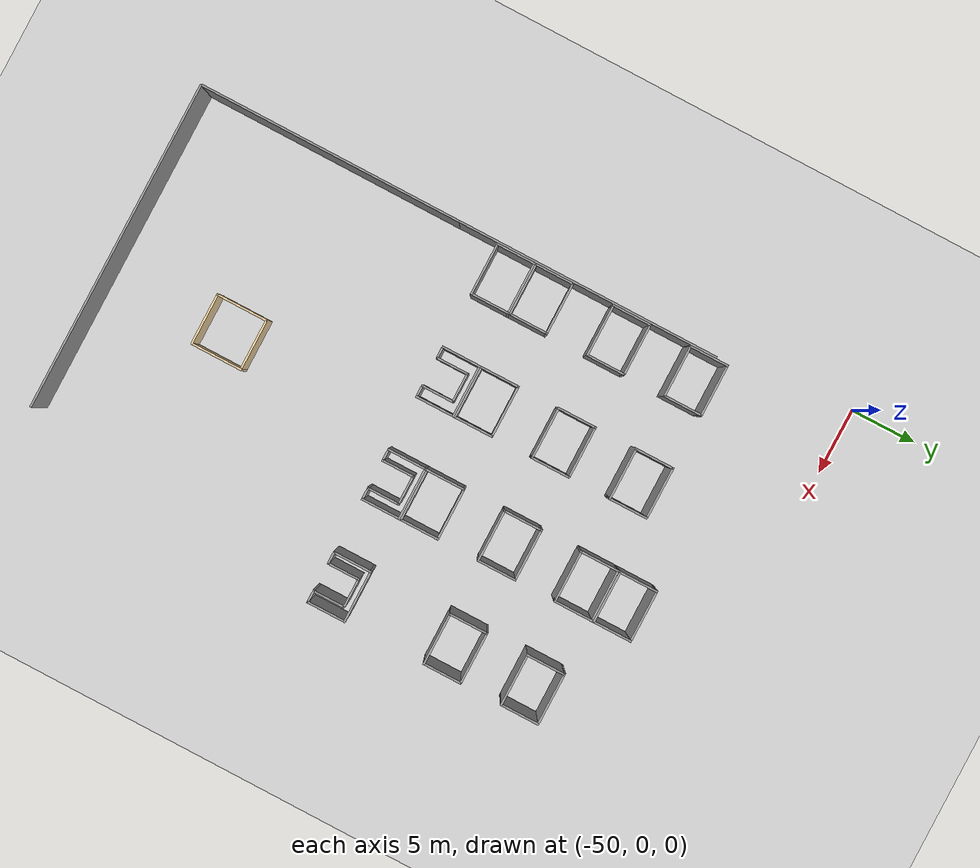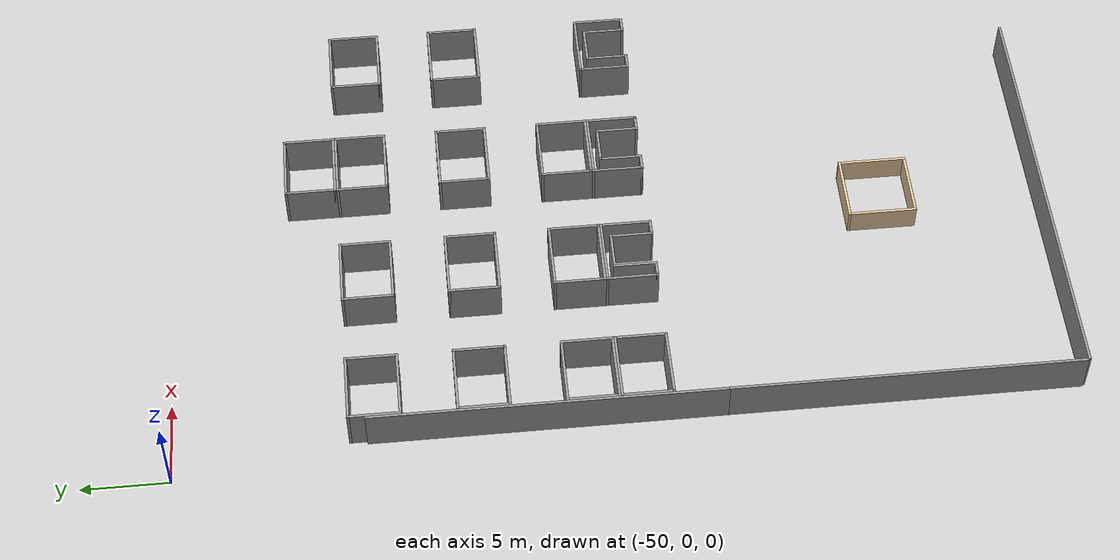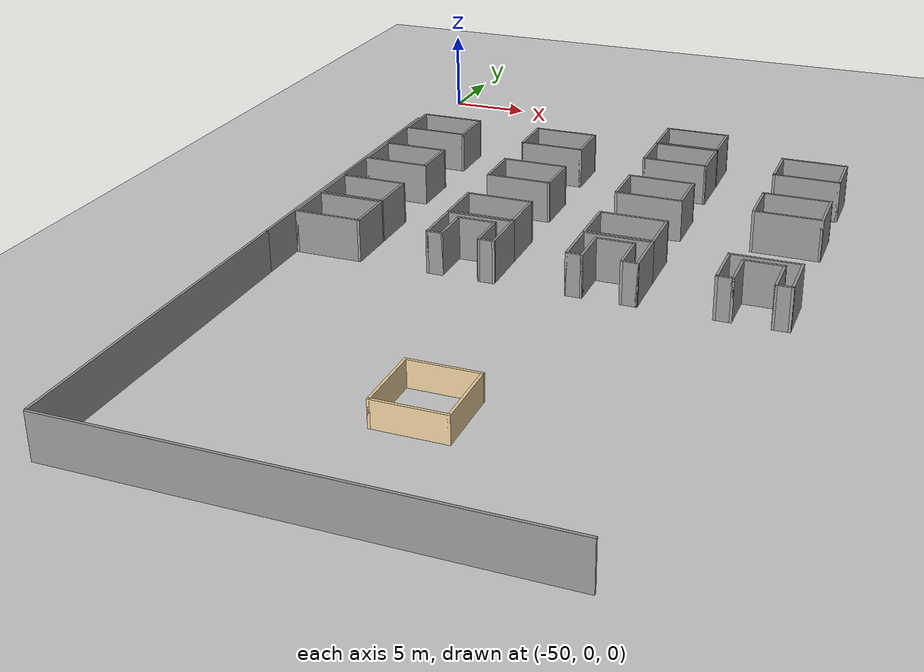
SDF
<sdf version="1.6">
 <world name="default">
  <model name="ground_plane">
   <static>1</static>
   <link name="link">
    <collision name="collision">
     <geometry><plane><normal>0 0 1</normal><size>105 105</size></plane></geometry>
     <surface>
      <contact><collide_bitmask>65535</collide_bitmask></contact>
      <friction><ode><mu>100</mu><mu2>50</mu2></ode></friction>
     </surface>
    </collision>
    <visual name="visual">
     <cast_shadows>0</cast_shadows>
     <geometry><plane><normal>0 0 1</normal><size>105 105</size></plane></geometry>
     <material>
      <script><uri>file://media/materials/scripts/gazebo.material</uri><name>Gazebo/Grey</name></script>
     </material>
    </visual>
   </link>
  </model>
  <model name="wall_v20m">
   <pose>-48.4198 -20.7165 0 0 -0 0</pose>
   <link name="Wall_35">
    <collision name="Wall_35_Collision">
     <geometry><box><size>20 0.15 2.5</size></box></geometry>
     <pose>0 0 1.25 0 -0 0</pose>
    </collision>
    <visual name="Wall_35_Visual">
     <pose>0 0 1.25 0 -0 0</pose>
     <geometry><box><size>20 0.15 2.5</size></box></geometry>
     <material>
      <script><uri>file://media/materials/scripts/gazebo.material</uri><name>Gazebo/Grey</name></script>
      <ambient>1 1 1 1</ambient>
     </material>
     <meta><layer>0</layer></meta>
    </visual>
    <pose>0 -0 0 0 -0 -1.5708</pose>
   </link>
   <static>1</static>
  </model>
  <model name="base3x4_26">
   <pose>-46.3516 -23.2162 0 0 -0 0</pose>
   <link name="Wall_18">
    <collision name="Wall_18_Collision">
     <geometry><box><size>3 0.15 2.5</size></box></geometry>
     <pose>0 0 1.25 0 -0 0</pose>
    </collision>
    <visual name="Wall_18_Visual">
     <pose>0 0 1.25 0 -0 0</pose>
     <geometry><box><size>3 0.15 2.5</size></box></geometry>
     <material>
      <script><uri>file://media/materials/scripts/gazebo.material</uri><name>Gazebo/Grey</name></script>
      <ambient>1 1 1 1</ambient>
     </material>
     <meta><layer>0</layer></meta>
    </visual>
    <pose>-1.925 -0 0 0 -0 -1.5708</pose>
   </link>
   <link name="Wall_19">
    <collision name="Wall_19_Collision">
     <geometry><box><size>4 0.15 2.5</size></box></geometry>
     <pose>0 0 1.25 0 -0 0</pose>
    </collision>
    <visual name="Wall_19_Visual">
     <pose>0 0 1.25 0 -0 0</pose>
     <geometry><box><size>4 0.15 2.5</size></box></geometry>
     <material>
      <script><uri>file://media/materials/scripts/gazebo.material</uri><name>Gazebo/Grey</name></script>
      <ambient>1 1 1 1</ambient>
     </material>
     <meta><layer>0</layer></meta>
    </visual>
    <pose>-0 -1.425 0 0 -0 0</pose>
   </link>
   <link name="Wall_20">
    <collision name="Wall_20_Collision">
     <geometry><box><size>3 0.15 2.5</size></box></geometry>
     <pose>0 0 1.25 0 -0 0</pose>
    </collision>
    <visual name="Wall_20_Visual">
     <pose>0 0 1.25 0 -0 0</pose>
     <geometry><box><size>3 0.15 2.5</size></box></geometry>
     <material>
      <script><uri>file://media/materials/scripts/gazebo.material</uri><name>Gazebo/Grey</name></script>
      <ambient>1 1 1 1</ambient>
     </material>
     <meta><layer>0</layer></meta>
    </visual>
    <pose>1.925 -0 0 0 -0 1.5708</pose>
   </link>
   <link name="Wall_21">
    <collision name="Wall_21_Collision">
     <geometry><box><size>4 0.15 2.5</size></box></geometry>
     <pose>0 0 1.25 0 -0 0</pose>
    </collision>
    <visual name="Wall_21_Visual">
     <pose>0 0 1.25 0 -0 0</pose>
     <geometry><box><size>4 0.15 2.5</size></box></geometry>
     <material>
      <script><uri>file://media/materials/scripts/gazebo.material</uri><name>Gazebo/Grey</name></script>
      <ambient>1 1 1 1</ambient>
     </material>
     <meta><layer>0</layer></meta>
    </visual>
    <pose>-0 1.425 0 0 -0 3.14159</pose>
   </link>
   <static>1</static>
  </model>
  <model name="base3x4_28">
   <pose>-46.3508 -17.215 0 0 -0 0</pose>
   <link name="Wall_18">
    <collision name="Wall_18_Collision">
     <geometry><box><size>3 0.15 2.5</size></box></geometry>
     <pose>0 0 1.25 0 -0 0</pose>
    </collision>
    <visual name="Wall_18_Visual">
     <pose>0 0 1.25 0 -0 0</pose>
     <geometry><box><size>3 0.15 2.5</size></box></geometry>
     <material>
      <script><uri>file://media/materials/scripts/gazebo.material</uri><name>Gazebo/Grey</name></script>
      <ambient>1 1 1 1</ambient>
     </material>
     <meta><layer>0</layer></meta>
    </visual>
    <pose>-1.925 -0 0 0 -0 -1.5708</pose>
   </link>
   <link name="Wall_19">
    <collision name="Wall_19_Collision">
     <geometry><box><size>4 0.15 2.5</size></box></geometry>
     <pose>0 0 1.25 0 -0 0</pose>
    </collision>
    <visual name="Wall_19_Visual">
     <pose>0 0 1.25 0 -0 0</pose>
     <geometry><box><size>4 0.15 2.5</size></box></geometry>
     <material>
      <script><uri>file://media/materials/scripts/gazebo.material</uri><name>Gazebo/Grey</name></script>
      <ambient>1 1 1 1</ambient>
     </material>
     <meta><layer>0</layer></meta>
    </visual>
    <pose>-0 -1.425 0 0 -0 0</pose>
   </link>
   <link name="Wall_20">
    <collision name="Wall_20_Collision">
     <geometry><box><size>3 0.15 2.5</size></box></geometry>
     <pose>0 0 1.25 0 -0 0</pose>
    </collision>
    <visual name="Wall_20_Visual">
     <pose>0 0 1.25 0 -0 0</pose>
     <geometry><box><size>3 0.15 2.5</size></box></geometry>
     <material>
      <script><uri>file://media/materials/scripts/gazebo.material</uri><name>Gazebo/Grey</name></script>
      <ambient>1 1 1 1</ambient>
     </material>
     <meta><layer>0</layer></meta>
    </visual>
    <pose>1.925 -0 0 0 -0 1.5708</pose>
   </link>
   <link name="Wall_21">
    <collision name="Wall_21_Collision">
     <geometry><box><size>4 0.15 2.5</size></box></geometry>
     <pose>0 0 1.25 0 -0 0</pose>
    </collision>
    <visual name="Wall_21_Visual">
     <pose>0 0 1.25 0 -0 0</pose>
     <geometry><box><size>4 0.15 2.5</size></box></geometry>
     <material>
      <script><uri>file://media/materials/scripts/gazebo.material</uri><name>Gazebo/Grey</name></script>
      <ambient>1 1 1 1</ambient>
     </material>
     <meta><layer>0</layer></meta>
    </visual>
    <pose>-0 1.425 0 0 -0 3.14159</pose>
   </link>
   <static>1</static>
  </model>
  <model name="base3x4_34">
   <pose>-38.3558 -23.2346 0 0 -0 0</pose>
   <link name="Wall_18">
    <collision name="Wall_18_Collision">
     <geometry><box><size>3 0.15 2.5</size></box></geometry>
     <pose>0 0 1.25 0 -0 0</pose>
    </collision>
    <visual name="Wall_18_Visual">
     <pose>0 0 1.25 0 -0 0</pose>
     <geometry><box><size>3 0.15 2.5</size></box></geometry>
     <material>
      <script><uri>file://media/materials/scripts/gazebo.material</uri><name>Gazebo/Grey</name></script>
      <ambient>1 1 1 1</ambient>
     </material>
     <meta><layer>0</layer></meta>
    </visual>
    <pose>-1.925 -0 0 0 -0 -1.5708</pose>
   </link>
   <link name="Wall_19">
    <collision name="Wall_19_Collision">
     <geometry><box><size>4 0.15 2.5</size></box></geometry>
     <pose>0 0 1.25 0 -0 0</pose>
    </collision>
    <visual name="Wall_19_Visual">
     <pose>0 0 1.25 0 -0 0</pose>
     <geometry><box><size>4 0.15 2.5</size></box></geometry>
     <material>
      <script><uri>file://media/materials/scripts/gazebo.material</uri><name>Gazebo/Grey</name></script>
      <ambient>1 1 1 1</ambient>
     </material>
     <meta><layer>0</layer></meta>
    </visual>
    <pose>-0 -1.425 0 0 -0 0</pose>
   </link>
   <link name="Wall_20">
    <collision name="Wall_20_Collision">
     <geometry><box><size>3 0.15 2.5</size></box></geometry>
     <pose>0 0 1.25 0 -0 0</pose>
    </collision>
    <visual name="Wall_20_Visual">
     <pose>0 0 1.25 0 -0 0</pose>
     <geometry><box><size>3 0.15 2.5</size></box></geometry>
     <material>
      <script><uri>file://media/materials/scripts/gazebo.material</uri><name>Gazebo/Grey</name></script>
      <ambient>1 1 1 1</ambient>
     </material>
     <meta><layer>0</layer></meta>
    </visual>
    <pose>1.925 -0 0 0 -0 1.5708</pose>
   </link>
   <link name="Wall_21">
    <collision name="Wall_21_Collision">
     <geometry><box><size>4 0.15 2.5</size></box></geometry>
     <pose>0 0 1.25 0 -0 0</pose>
    </collision>
    <visual name="Wall_21_Visual">
     <pose>0 0 1.25 0 -0 0</pose>
     <geometry><box><size>4 0.15 2.5</size></box></geometry>
     <material>
      <script><uri>file://media/materials/scripts/gazebo.material</uri><name>Gazebo/Grey</name></script>
      <ambient>1 1 1 1</ambient>
     </material>
     <meta><layer>0</layer></meta>
    </visual>
    <pose>-0 1.425 0 0 -0 3.14159</pose>
   </link>
   <static>1</static>
  </model>
  <model name="base3x4_36">
   <pose>-38.357 -17.2543 0 0 -0 0</pose>
   <link name="Wall_18">
    <collision name="Wall_18_Collision">
     <geometry><box><size>3 0.15 2.5</size></box></geometry>
     <pose>0 0 1.25 0 -0 0</pose>
    </collision>
    <visual name="Wall_18_Visual">
     <pose>0 0 1.25 0 -0 0</pose>
     <geometry><box><size>3 0.15 2.5</size></box></geometry>
     <material>
      <script><uri>file://media/materials/scripts/gazebo.material</uri><name>Gazebo/Grey</name></script>
      <ambient>1 1 1 1</ambient>
     </material>
     <meta><layer>0</layer></meta>
    </visual>
    <pose>-1.925 -0 0 0 -0 -1.5708</pose>
   </link>
   <link name="Wall_19">
    <collision name="Wall_19_Collision">
     <geometry><box><size>4 0.15 2.5</size></box></geometry>
     <pose>0 0 1.25 0 -0 0</pose>
    </collision>
    <visual name="Wall_19_Visual">
     <pose>0 0 1.25 0 -0 0</pose>
     <geometry><box><size>4 0.15 2.5</size></box></geometry>
     <material>
      <script><uri>file://media/materials/scripts/gazebo.material</uri><name>Gazebo/Grey</name></script>
      <ambient>1 1 1 1</ambient>
     </material>
     <meta><layer>0</layer></meta>
    </visual>
    <pose>-0 -1.425 0 0 -0 0</pose>
   </link>
   <link name="Wall_20">
    <collision name="Wall_20_Collision">
     <geometry><box><size>3 0.15 2.5</size></box></geometry>
     <pose>0 0 1.25 0 -0 0</pose>
    </collision>
    <visual name="Wall_20_Visual">
     <pose>0 0 1.25 0 -0 0</pose>
     <geometry><box><size>3 0.15 2.5</size></box></geometry>
     <material>
      <script><uri>file://media/materials/scripts/gazebo.material</uri><name>Gazebo/Grey</name></script>
      <ambient>1 1 1 1</ambient>
     </material>
     <meta><layer>0</layer></meta>
    </visual>
    <pose>1.925 -0 0 0 -0 1.5708</pose>
   </link>
   <link name="Wall_21">
    <collision name="Wall_21_Collision">
     <geometry><box><size>4 0.15 2.5</size></box></geometry>
     <pose>0 0 1.25 0 -0 0</pose>
    </collision>
    <visual name="Wall_21_Visual">
     <pose>0 0 1.25 0 -0 0</pose>
     <geometry><box><size>4 0.15 2.5</size></box></geometry>
     <material>
      <script><uri>file://media/materials/scripts/gazebo.material</uri><name>Gazebo/Grey</name></script>
      <ambient>1 1 1 1</ambient>
     </material>
     <meta><layer>0</layer></meta>
    </visual>
    <pose>-0 1.425 0 0 -0 3.14159</pose>
   </link>
   <static>1</static>
  </model>
  <model name="base3x4_31">
   <pose>-30.4046 -23.2308 0 0 -0 0</pose>
   <link name="Wall_18">
    <collision name="Wall_18_Collision">
     <geometry><box><size>3 0.15 2.5</size></box></geometry>
     <pose>0 0 1.25 0 -0 0</pose>
    </collision>
    <visual name="Wall_18_Visual">
     <pose>0 0 1.25 0 -0 0</pose>
     <geometry><box><size>3 0.15 2.5</size></box></geometry>
     <material>
      <script><uri>file://media/materials/scripts/gazebo.material</uri><name>Gazebo/Grey</name></script>
      <ambient>1 1 1 1</ambient>
     </material>
     <meta><layer>0</layer></meta>
    </visual>
    <pose>-1.925 -0 0 0 -0 -1.5708</pose>
   </link>
   <link name="Wall_19">
    <collision name="Wall_19_Collision">
     <geometry><box><size>4 0.15 2.5</size></box></geometry>
     <pose>0 0 1.25 0 -0 0</pose>
    </collision>
    <visual name="Wall_19_Visual">
     <pose>0 0 1.25 0 -0 0</pose>
     <geometry><box><size>4 0.15 2.5</size></box></geometry>
     <material>
      <script><uri>file://media/materials/scripts/gazebo.material</uri><name>Gazebo/Grey</name></script>
      <ambient>1 1 1 1</ambient>
     </material>
     <meta><layer>0</layer></meta>
    </visual>
    <pose>-0 -1.425 0 0 -0 0</pose>
   </link>
   <link name="Wall_20">
    <collision name="Wall_20_Collision">
     <geometry><box><size>3 0.15 2.5</size></box></geometry>
     <pose>0 0 1.25 0 -0 0</pose>
    </collision>
    <visual name="Wall_20_Visual">
     <pose>0 0 1.25 0 -0 0</pose>
     <geometry><box><size>3 0.15 2.5</size></box></geometry>
     <material>
      <script><uri>file://media/materials/scripts/gazebo.material</uri><name>Gazebo/Grey</name></script>
      <ambient>1 1 1 1</ambient>
     </material>
     <meta><layer>0</layer></meta>
    </visual>
    <pose>1.925 -0 0 0 -0 1.5708</pose>
   </link>
   <link name="Wall_21">
    <collision name="Wall_21_Collision">
     <geometry><box><size>4 0.15 2.5</size></box></geometry>
     <pose>0 0 1.25 0 -0 0</pose>
    </collision>
    <visual name="Wall_21_Visual">
     <pose>0 0 1.25 0 -0 0</pose>
     <geometry><box><size>4 0.15 2.5</size></box></geometry>
     <material>
      <script><uri>file://media/materials/scripts/gazebo.material</uri><name>Gazebo/Grey</name></script>
      <ambient>1 1 1 1</ambient>
     </material>
     <meta><layer>0</layer></meta>
    </visual>
    <pose>-0 1.425 0 0 -0 3.14159</pose>
   </link>
   <static>1</static>
  </model>
  <model name="base3x4_33">
   <pose>-30.4092 -17.2319 0 0 -0 0</pose>
   <link name="Wall_18">
    <collision name="Wall_18_Collision">
     <geometry><box><size>3 0.15 2.5</size></box></geometry>
     <pose>0 0 1.25 0 -0 0</pose>
    </collision>
    <visual name="Wall_18_Visual">
     <pose>0 0 1.25 0 -0 0</pose>
     <geometry><box><size>3 0.15 2.5</size></box></geometry>
     <material>
      <script><uri>file://media/materials/scripts/gazebo.material</uri><name>Gazebo/Grey</name></script>
      <ambient>1 1 1 1</ambient>
     </material>
     <meta><layer>0</layer></meta>
    </visual>
    <pose>-1.925 -0 0 0 -0 -1.5708</pose>
   </link>
   <link name="Wall_19">
    <collision name="Wall_19_Collision">
     <geometry><box><size>4 0.15 2.5</size></box></geometry>
     <pose>0 0 1.25 0 -0 0</pose>
    </collision>
    <visual name="Wall_19_Visual">
     <pose>0 0 1.25 0 -0 0</pose>
     <geometry><box><size>4 0.15 2.5</size></box></geometry>
     <material>
      <script><uri>file://media/materials/scripts/gazebo.material</uri><name>Gazebo/Grey</name></script>
      <ambient>1 1 1 1</ambient>
     </material>
     <meta><layer>0</layer></meta>
    </visual>
    <pose>-0 -1.425 0 0 -0 0</pose>
   </link>
   <link name="Wall_20">
    <collision name="Wall_20_Collision">
     <geometry><box><size>3 0.15 2.5</size></box></geometry>
     <pose>0 0 1.25 0 -0 0</pose>
    </collision>
    <visual name="Wall_20_Visual">
     <pose>0 0 1.25 0 -0 0</pose>
     <geometry><box><size>3 0.15 2.5</size></box></geometry>
     <material>
      <script><uri>file://media/materials/scripts/gazebo.material</uri><name>Gazebo/Grey</name></script>
      <ambient>1 1 1 1</ambient>
     </material>
     <meta><layer>0</layer></meta>
    </visual>
    <pose>1.925 -0 0 0 -0 1.5708</pose>
   </link>
   <link name="Wall_21">
    <collision name="Wall_21_Collision">
     <geometry><box><size>4 0.15 2.5</size></box></geometry>
     <pose>0 0 1.25 0 -0 0</pose>
    </collision>
    <visual name="Wall_21_Visual">
     <pose>0 0 1.25 0 -0 0</pose>
     <geometry><box><size>4 0.15 2.5</size></box></geometry>
     <material>
      <script><uri>file://media/materials/scripts/gazebo.material</uri><name>Gazebo/Grey</name></script>
      <ambient>1 1 1 1</ambient>
     </material>
     <meta><layer>0</layer></meta>
    </visual>
    <pose>-0 1.425 0 0 -0 3.14159</pose>
   </link>
   <static>1</static>
  </model>
  <model name="base3x4_39">
   <pose>-46.3493 -11.2283 0 0 -0 0</pose>
   <link name="Wall_18">
    <collision name="Wall_18_Collision">
     <geometry><box><size>3 0.15 2.5</size></box></geometry>
     <pose>0 0 1.25 0 -0 0</pose>
    </collision>
    <visual name="Wall_18_Visual">
     <pose>0 0 1.25 0 -0 0</pose>
     <geometry><box><size>3 0.15 2.5</size></box></geometry>
     <material>
      <script><uri>file://media/materials/scripts/gazebo.material</uri><name>Gazebo/Grey</name></script>
      <ambient>1 1 1 1</ambient>
     </material>
     <meta><layer>0</layer></meta>
    </visual>
    <pose>-1.925 -0 0 0 -0 -1.5708</pose>
   </link>
   <link name="Wall_19">
    <collision name="Wall_19_Collision">
     <geometry><box><size>4 0.15 2.5</size></box></geometry>
     <pose>0 0 1.25 0 -0 0</pose>
    </collision>
    <visual name="Wall_19_Visual">
     <pose>0 0 1.25 0 -0 0</pose>
     <geometry><box><size>4 0.15 2.5</size></box></geometry>
     <material>
      <script><uri>file://media/materials/scripts/gazebo.material</uri><name>Gazebo/Grey</name></script>
      <ambient>1 1 1 1</ambient>
     </material>
     <meta><layer>0</layer></meta>
    </visual>
    <pose>-0 -1.425 0 0 -0 0</pose>
   </link>
   <link name="Wall_20">
    <collision name="Wall_20_Collision">
     <geometry><box><size>3 0.15 2.5</size></box></geometry>
     <pose>0 0 1.25 0 -0 0</pose>
    </collision>
    <visual name="Wall_20_Visual">
     <pose>0 0 1.25 0 -0 0</pose>
     <geometry><box><size>3 0.15 2.5</size></box></geometry>
     <material>
      <script><uri>file://media/materials/scripts/gazebo.material</uri><name>Gazebo/Grey</name></script>
      <ambient>1 1 1 1</ambient>
     </material>
     <meta><layer>0</layer></meta>
    </visual>
    <pose>1.925 -0 0 0 -0 1.5708</pose>
   </link>
   <link name="Wall_21">
    <collision name="Wall_21_Collision">
     <geometry><box><size>4 0.15 2.5</size></box></geometry>
     <pose>0 0 1.25 0 -0 0</pose>
    </collision>
    <visual name="Wall_21_Visual">
     <pose>0 0 1.25 0 -0 0</pose>
     <geometry><box><size>4 0.15 2.5</size></box></geometry>
     <material>
      <script><uri>file://media/materials/scripts/gazebo.material</uri><name>Gazebo/Grey</name></script>
      <ambient>1 1 1 1</ambient>
     </material>
     <meta><layer>0</layer></meta>
    </visual>
    <pose>-0 1.425 0 0 -0 3.14159</pose>
   </link>
   <static>1</static>
  </model>
  <model name="base3x4_59">
   <pose>-38.3726 -11.2428 0 0 -0 0</pose>
   <link name="Wall_18">
    <collision name="Wall_18_Collision">
     <geometry><box><size>3 0.15 2.5</size></box></geometry>
     <pose>0 0 1.25 0 -0 0</pose>
    </collision>
    <visual name="Wall_18_Visual">
     <pose>0 0 1.25 0 -0 0</pose>
     <geometry><box><size>3 0.15 2.5</size></box></geometry>
     <material>
      <script><uri>file://media/materials/scripts/gazebo.material</uri><name>Gazebo/Grey</name></script>
      <ambient>1 1 1 1</ambient>
     </material>
     <meta><layer>0</layer></meta>
    </visual>
    <pose>-1.925 -0 0 0 -0 -1.5708</pose>
   </link>
   <link name="Wall_19">
    <collision name="Wall_19_Collision">
     <geometry><box><size>4 0.15 2.5</size></box></geometry>
     <pose>0 0 1.25 0 -0 0</pose>
    </collision>
    <visual name="Wall_19_Visual">
     <pose>0 0 1.25 0 -0 0</pose>
     <geometry><box><size>4 0.15 2.5</size></box></geometry>
     <material>
      <script><uri>file://media/materials/scripts/gazebo.material</uri><name>Gazebo/Grey</name></script>
      <ambient>1 1 1 1</ambient>
     </material>
     <meta><layer>0</layer></meta>
    </visual>
    <pose>-0 -1.425 0 0 -0 0</pose>
   </link>
   <link name="Wall_20">
    <collision name="Wall_20_Collision">
     <geometry><box><size>3 0.15 2.5</size></box></geometry>
     <pose>0 0 1.25 0 -0 0</pose>
    </collision>
    <visual name="Wall_20_Visual">
     <pose>0 0 1.25 0 -0 0</pose>
     <geometry><box><size>3 0.15 2.5</size></box></geometry>
     <material>
      <script><uri>file://media/materials/scripts/gazebo.material</uri><name>Gazebo/Grey</name></script>
      <ambient>1 1 1 1</ambient>
     </material>
     <meta><layer>0</layer></meta>
    </visual>
    <pose>1.925 -0 0 0 -0 1.5708</pose>
   </link>
   <link name="Wall_21">
    <collision name="Wall_21_Collision">
     <geometry><box><size>4 0.15 2.5</size></box></geometry>
     <pose>0 0 1.25 0 -0 0</pose>
    </collision>
    <visual name="Wall_21_Visual">
     <pose>0 0 1.25 0 -0 0</pose>
     <geometry><box><size>4 0.15 2.5</size></box></geometry>
     <material>
      <script><uri>file://media/materials/scripts/gazebo.material</uri><name>Gazebo/Grey</name></script>
      <ambient>1 1 1 1</ambient>
     </material>
     <meta><layer>0</layer></meta>
    </visual>
    <pose>-0 1.425 0 0 -0 3.14159</pose>
   </link>
   <static>1</static>
  </model>
  <model name="base3x4_0">
   <pose>-30.4026 -11.2715 0 0 -0 0</pose>
   <link name="Wall_18">
    <collision name="Wall_18_Collision">
     <geometry><box><size>3 0.15 2.5</size></box></geometry>
     <pose>0 0 1.25 0 -0 0</pose>
    </collision>
    <visual name="Wall_18_Visual">
     <pose>0 0 1.25 0 -0 0</pose>
     <geometry><box><size>3 0.15 2.5</size></box></geometry>
     <material>
      <script><uri>file://media/materials/scripts/gazebo.material</uri><name>Gazebo/Grey</name></script>
      <ambient>1 1 1 1</ambient>
     </material>
     <meta><layer>0</layer></meta>
    </visual>
    <pose>-1.925 -0 0 0 -0 -1.5708</pose>
   </link>
   <link name="Wall_19">
    <collision name="Wall_19_Collision">
     <geometry><box><size>4 0.15 2.5</size></box></geometry>
     <pose>0 0 1.25 0 -0 0</pose>
    </collision>
    <visual name="Wall_19_Visual">
     <pose>0 0 1.25 0 -0 0</pose>
     <geometry><box><size>4 0.15 2.5</size></box></geometry>
     <material>
      <script><uri>file://media/materials/scripts/gazebo.material</uri><name>Gazebo/Grey</name></script>
      <ambient>1 1 1 1</ambient>
     </material>
     <meta><layer>0</layer></meta>
    </visual>
    <pose>-0 -1.425 0 0 -0 0</pose>
   </link>
   <link name="Wall_20">
    <collision name="Wall_20_Collision">
     <geometry><box><size>3 0.15 2.5</size></box></geometry>
     <pose>0 0 1.25 0 -0 0</pose>
    </collision>
    <visual name="Wall_20_Visual">
     <pose>0 0 1.25 0 -0 0</pose>
     <geometry><box><size>3 0.15 2.5</size></box></geometry>
     <material>
      <script><uri>file://media/materials/scripts/gazebo.material</uri><name>Gazebo/Grey</name></script>
      <ambient>1 1 1 1</ambient>
     </material>
     <meta><layer>0</layer></meta>
    </visual>
    <pose>1.925 -0 0 0 -0 1.5708</pose>
   </link>
   <link name="Wall_21">
    <collision name="Wall_21_Collision">
     <geometry><box><size>4 0.15 2.5</size></box></geometry>
     <pose>0 0 1.25 0 -0 0</pose>
    </collision>
    <visual name="Wall_21_Visual">
     <pose>0 0 1.25 0 -0 0</pose>
     <geometry><box><size>4 0.15 2.5</size></box></geometry>
     <material>
      <script><uri>file://media/materials/scripts/gazebo.material</uri><name>Gazebo/Grey</name></script>
      <ambient>1 1 1 1</ambient>
     </material>
     <meta><layer>0</layer></meta>
    </visual>
    <pose>-0 1.425 0 0 -0 3.14159</pose>
   </link>
   <static>1</static>
  </model>
  <model name="base3x4_2">
   <pose>-30.4005 -8.26913 0 0 -0 0</pose>
   <link name="Wall_18">
    <collision name="Wall_18_Collision">
     <geometry><box><size>3 0.15 2.5</size></box></geometry>
     <pose>0 0 1.25 0 -0 0</pose>
    </collision>
    <visual name="Wall_18_Visual">
     <pose>0 0 1.25 0 -0 0</pose>
     <geometry><box><size>3 0.15 2.5</size></box></geometry>
     <material>
      <script><uri>file://media/materials/scripts/gazebo.material</uri><name>Gazebo/Grey</name></script>
      <ambient>1 1 1 1</ambient>
     </material>
     <meta><layer>0</layer></meta>
    </visual>
    <pose>-1.925 -0 0 0 -0 -1.5708</pose>
   </link>
   <link name="Wall_19">
    <collision name="Wall_19_Collision">
     <geometry><box><size>4 0.15 2.5</size></box></geometry>
     <pose>0 0 1.25 0 -0 0</pose>
    </collision>
    <visual name="Wall_19_Visual">
     <pose>0 0 1.25 0 -0 0</pose>
     <geometry><box><size>4 0.15 2.5</size></box></geometry>
     <material>
      <script><uri>file://media/materials/scripts/gazebo.material</uri><name>Gazebo/Grey</name></script>
      <ambient>1 1 1 1</ambient>
     </material>
     <meta><layer>0</layer></meta>
    </visual>
    <pose>-0 -1.425 0 0 -0 0</pose>
   </link>
   <link name="Wall_20">
    <collision name="Wall_20_Collision">
     <geometry><box><size>3 0.15 2.5</size></box></geometry>
     <pose>0 0 1.25 0 -0 0</pose>
    </collision>
    <visual name="Wall_20_Visual">
     <pose>0 0 1.25 0 -0 0</pose>
     <geometry><box><size>3 0.15 2.5</size></box></geometry>
     <material>
      <script><uri>file://media/materials/scripts/gazebo.material</uri><name>Gazebo/Grey</name></script>
      <ambient>1 1 1 1</ambient>
     </material>
     <meta><layer>0</layer></meta>
    </visual>
    <pose>1.925 -0 0 0 -0 1.5708</pose>
   </link>
   <link name="Wall_21">
    <collision name="Wall_21_Collision">
     <geometry><box><size>4 0.15 2.5</size></box></geometry>
     <pose>0 0 1.25 0 -0 0</pose>
    </collision>
    <visual name="Wall_21_Visual">
     <pose>0 0 1.25 0 -0 0</pose>
     <geometry><box><size>4 0.15 2.5</size></box></geometry>
     <material>
      <script><uri>file://media/materials/scripts/gazebo.material</uri><name>Gazebo/Grey</name></script>
      <ambient>1 1 1 1</ambient>
     </material>
     <meta><layer>0</layer></meta>
    </visual>
    <pose>-0 1.425 0 0 -0 3.14159</pose>
   </link>
   <static>1</static>
  </model>
  <model name="base3x4_61">
   <pose>-22.4078 -17.2215 0 0 -0 0</pose>
   <link name="Wall_18">
    <collision name="Wall_18_Collision">
     <geometry><box><size>3 0.15 2.5</size></box></geometry>
     <pose>0 0 1.25 0 -0 0</pose>
    </collision>
    <visual name="Wall_18_Visual">
     <pose>0 0 1.25 0 -0 0</pose>
     <geometry><box><size>3 0.15 2.5</size></box></geometry>
     <material>
      <script><uri>file://media/materials/scripts/gazebo.material</uri><name>Gazebo/Grey</name></script>
      <ambient>1 1 1 1</ambient>
     </material>
     <meta><layer>0</layer></meta>
    </visual>
    <pose>-1.925 -0 0 0 -0 -1.5708</pose>
   </link>
   <link name="Wall_19">
    <collision name="Wall_19_Collision">
     <geometry><box><size>4 0.15 2.5</size></box></geometry>
     <pose>0 0 1.25 0 -0 0</pose>
    </collision>
    <visual name="Wall_19_Visual">
     <pose>0 0 1.25 0 -0 0</pose>
     <geometry><box><size>4 0.15 2.5</size></box></geometry>
     <material>
      <script><uri>file://media/materials/scripts/gazebo.material</uri><name>Gazebo/Grey</name></script>
      <ambient>1 1 1 1</ambient>
     </material>
     <meta><layer>0</layer></meta>
    </visual>
    <pose>-0 -1.425 0 0 -0 0</pose>
   </link>
   <link name="Wall_20">
    <collision name="Wall_20_Collision">
     <geometry><box><size>3 0.15 2.5</size></box></geometry>
     <pose>0 0 1.25 0 -0 0</pose>
    </collision>
    <visual name="Wall_20_Visual">
     <pose>0 0 1.25 0 -0 0</pose>
     <geometry><box><size>3 0.15 2.5</size></box></geometry>
     <material>
      <script><uri>file://media/materials/scripts/gazebo.material</uri><name>Gazebo/Grey</name></script>
      <ambient>1 1 1 1</ambient>
     </material>
     <meta><layer>0</layer></meta>
    </visual>
    <pose>1.925 -0 0 0 -0 1.5708</pose>
   </link>
   <link name="Wall_21">
    <collision name="Wall_21_Collision">
     <geometry><box><size>4 0.15 2.5</size></box></geometry>
     <pose>0 0 1.25 0 -0 0</pose>
    </collision>
    <visual name="Wall_21_Visual">
     <pose>0 0 1.25 0 -0 0</pose>
     <geometry><box><size>4 0.15 2.5</size></box></geometry>
     <material>
      <script><uri>file://media/materials/scripts/gazebo.material</uri><name>Gazebo/Grey</name></script>
      <ambient>1 1 1 1</ambient>
     </material>
     <meta><layer>0</layer></meta>
    </visual>
    <pose>-0 1.425 0 0 -0 3.14159</pose>
   </link>
   <static>1</static>
  </model>
  <model name="base3x4_67">
   <pose>-22.4088 -11.219 0 0 -0 0</pose>
   <link name="Wall_18">
    <collision name="Wall_18_Collision">
     <geometry><box><size>3 0.15 2.5</size></box></geometry>
     <pose>0 0 1.25 0 -0 0</pose>
    </collision>
    <visual name="Wall_18_Visual">
     <pose>0 0 1.25 0 -0 0</pose>
     <geometry><box><size>3 0.15 2.5</size></box></geometry>
     <material>
      <script><uri>file://media/materials/scripts/gazebo.material</uri><name>Gazebo/Grey</name></script>
      <ambient>1 1 1 1</ambient>
     </material>
     <meta><layer>0</layer></meta>
    </visual>
    <pose>-1.925 -0 0 0 -0 -1.5708</pose>
   </link>
   <link name="Wall_19">
    <collision name="Wall_19_Collision">
     <geometry><box><size>4 0.15 2.5</size></box></geometry>
     <pose>0 0 1.25 0 -0 0</pose>
    </collision>
    <visual name="Wall_19_Visual">
     <pose>0 0 1.25 0 -0 0</pose>
     <geometry><box><size>4 0.15 2.5</size></box></geometry>
     <material>
      <script><uri>file://media/materials/scripts/gazebo.material</uri><name>Gazebo/Grey</name></script>
      <ambient>1 1 1 1</ambient>
     </material>
     <meta><layer>0</layer></meta>
    </visual>
    <pose>-0 -1.425 0 0 -0 0</pose>
   </link>
   <link name="Wall_20">
    <collision name="Wall_20_Collision">
     <geometry><box><size>3 0.15 2.5</size></box></geometry>
     <pose>0 0 1.25 0 -0 0</pose>
    </collision>
    <visual name="Wall_20_Visual">
     <pose>0 0 1.25 0 -0 0</pose>
     <geometry><box><size>3 0.15 2.5</size></box></geometry>
     <material>
      <script><uri>file://media/materials/scripts/gazebo.material</uri><name>Gazebo/Grey</name></script>
      <ambient>1 1 1 1</ambient>
     </material>
     <meta><layer>0</layer></meta>
    </visual>
    <pose>1.925 -0 0 0 -0 1.5708</pose>
   </link>
   <link name="Wall_21">
    <collision name="Wall_21_Collision">
     <geometry><box><size>4 0.15 2.5</size></box></geometry>
     <pose>0 0 1.25 0 -0 0</pose>
    </collision>
    <visual name="Wall_21_Visual">
     <pose>0 0 1.25 0 -0 0</pose>
     <geometry><box><size>4 0.15 2.5</size></box></geometry>
     <material>
      <script><uri>file://media/materials/scripts/gazebo.material</uri><name>Gazebo/Grey</name></script>
      <ambient>1 1 1 1</ambient>
     </material>
     <meta><layer>0</layer></meta>
    </visual>
    <pose>-0 1.425 0 0 -0 3.14159</pose>
   </link>
   <static>1</static>
  </model>
  <model name="wall_25m_1">
   <pose>-35.9126 -50.7151 0 0 -0 0</pose>
   <link name="Wall_28">
    <collision name="Wall_28_Collision">
     <geometry><box><size>25 0.15 2.5</size></box></geometry>
     <pose>0 0 1.25 0 -0 0</pose>
    </collision>
    <visual name="Wall_28_Visual">
     <pose>0 0 1.25 0 -0 0</pose>
     <geometry><box><size>25 0.15 2.5</size></box></geometry>
     <material>
      <script><uri>file://media/materials/scripts/gazebo.material</uri><name>Gazebo/Grey</name></script>
      <ambient>1 1 1 1</ambient>
     </material>
     <meta><layer>0</layer></meta>
    </visual>
   </link>
   <static>1</static>
  </model>
  <model name="wall_v20m_7">
   <pose>-48.4151 -40.6667 0 0 -0 0</pose>
   <link name="Wall_35">
    <collision name="Wall_35_Collision">
     <geometry><box><size>20 0.15 2.5</size></box></geometry>
     <pose>0 0 1.25 0 -0 0</pose>
    </collision>
    <visual name="Wall_35_Visual">
     <pose>0 0 1.25 0 -0 0</pose>
     <geometry><box><size>20 0.15 2.5</size></box></geometry>
     <material>
      <script><uri>file://media/materials/scripts/gazebo.material</uri><name>Gazebo/Grey</name></script>
      <ambient>1 1 1 1</ambient>
     </material>
     <meta><layer>0</layer></meta>
    </visual>
    <pose>0 -0 0 0 -0 -1.5708</pose>
   </link>
   <static>1</static>
  </model>
  <model name="box4x4x1.5_0">
   <pose>-34.2755 -41.3514 0 0 -0 0</pose>
   <link name="Wall_5">
    <collision name="Wall_5_Collision">
     <geometry><box><size>4 0.15 1.5</size></box></geometry>
     <pose>0 0 0.75 0 -0 0</pose>
    </collision>
    <visual name="Wall_5_Visual">
     <pose>0 0 0.75 0 -0 0</pose>
     <geometry><box><size>4 0.15 1.5</size></box></geometry>
     <material>
      <script><uri>file://media/materials/scripts/gazebo.material</uri><name>Gazebo/Grey</name></script>
      <ambient>0.921569 0.807843 0.615686 1</ambient>
     </material>
     <meta><layer>0</layer></meta>
    </visual>
    <pose>-1.925 -0 0 0 -0 -1.5708</pose>
   </link>
   <link name="Wall_6">
    <collision name="Wall_6_Collision">
     <geometry><box><size>4 0.15 1.5</size></box></geometry>
     <pose>0 0 0.75 0 -0 0</pose>
    </collision>
    <visual name="Wall_6_Visual">
     <pose>0 0 0.75 0 -0 0</pose>
     <geometry><box><size>4 0.15 1.5</size></box></geometry>
     <material>
      <script><uri>file://media/materials/scripts/gazebo.material</uri><name>Gazebo/Grey</name></script>
      <ambient>0.921569 0.807843 0.615686 1</ambient>
     </material>
     <meta><layer>0</layer></meta>
    </visual>
    <pose>0 -1.925 0 0 -0 0</pose>
   </link>
   <link name="Wall_7">
    <collision name="Wall_7_Collision">
     <geometry><box><size>4 0.15 1.5</size></box></geometry>
     <pose>0 0 0.75 0 -0 0</pose>
    </collision>
    <visual name="Wall_7_Visual">
     <pose>0 0 0.75 0 -0 0</pose>
     <geometry><box><size>4 0.15 1.5</size></box></geometry>
     <material>
      <script><uri>file://media/materials/scripts/gazebo.material</uri><name>Gazebo/Grey</name></script>
      <ambient>0.921569 0.807843 0.615686 1</ambient>
     </material>
     <meta><layer>0</layer></meta>
    </visual>
    <pose>1.925 -0 0 0 -0 1.5708</pose>
   </link>
   <link name="Wall_8">
    <collision name="Wall_8_Collision">
     <geometry><box><size>4 0.15 1.5</size></box></geometry>
     <pose>0 0 0.75 0 -0 0</pose>
    </collision>
    <visual name="Wall_8_Visual">
     <pose>0 0 0.75 0 -0 0</pose>
     <geometry><box><size>4 0.15 1.5</size></box></geometry>
     <material>
      <script><uri>file://media/materials/scripts/gazebo.material</uri><name>Gazebo/Grey</name></script>
      <ambient>0.921569 0.807843 0.615686 1</ambient>
     </material>
     <meta><layer>0</layer></meta>
    </visual>
    <pose>0 1.925 0 0 -0 3.14159</pose>
   </link>
   <static>1</static>
  </model>
  <model name="base3x4">
   <pose>-46.3496 -26.2095 0 0 -0 0</pose>
   <link name="Wall_18">
    <collision name="Wall_18_Collision">
     <geometry><box><size>3 0.15 2.5</size></box></geometry>
     <pose>0 0 1.25 0 -0 0</pose>
    </collision>
    <visual name="Wall_18_Visual">
     <pose>0 0 1.25 0 -0 0</pose>
     <geometry><box><size>3 0.15 2.5</size></box></geometry>
     <material>
      <script><uri>file://media/materials/scripts/gazebo.material</uri><name>Gazebo/Grey</name></script>
      <ambient>1 1 1 1</ambient>
     </material>
     <meta><layer>0</layer></meta>
    </visual>
    <pose>-1.925 -0 0 0 -0 -1.5708</pose>
   </link>
   <link name="Wall_19">
    <collision name="Wall_19_Collision">
     <geometry><box><size>4 0.15 2.5</size></box></geometry>
     <pose>0 0 1.25 0 -0 0</pose>
    </collision>
    <visual name="Wall_19_Visual">
     <pose>0 0 1.25 0 -0 0</pose>
     <geometry><box><size>4 0.15 2.5</size></box></geometry>
     <material>
      <script><uri>file://media/materials/scripts/gazebo.material</uri><name>Gazebo/Grey</name></script>
      <ambient>1 1 1 1</ambient>
     </material>
     <meta><layer>0</layer></meta>
    </visual>
    <pose>-0 -1.425 0 0 -0 0</pose>
   </link>
   <link name="Wall_20">
    <collision name="Wall_20_Collision">
     <geometry><box><size>3 0.15 2.5</size></box></geometry>
     <pose>0 0 1.25 0 -0 0</pose>
    </collision>
    <visual name="Wall_20_Visual">
     <pose>0 0 1.25 0 -0 0</pose>
     <geometry><box><size>3 0.15 2.5</size></box></geometry>
     <material>
      <script><uri>file://media/materials/scripts/gazebo.material</uri><name>Gazebo/Grey</name></script>
      <ambient>1 1 1 1</ambient>
     </material>
     <meta><layer>0</layer></meta>
    </visual>
    <pose>1.925 -0 0 0 -0 1.5708</pose>
   </link>
   <link name="Wall_21">
    <collision name="Wall_21_Collision">
     <geometry><box><size>4 0.15 2.5</size></box></geometry>
     <pose>0 0 1.25 0 -0 0</pose>
    </collision>
    <visual name="Wall_21_Visual">
     <pose>0 0 1.25 0 -0 0</pose>
     <geometry><box><size>4 0.15 2.5</size></box></geometry>
     <material>
      <script><uri>file://media/materials/scripts/gazebo.material</uri><name>Gazebo/Grey</name></script>
      <ambient>1 1 1 1</ambient>
     </material>
     <meta><layer>0</layer></meta>
    </visual>
    <pose>-0 1.425 0 0 -0 3.14159</pose>
   </link>
   <static>1</static>
  </model>
  <model name="box_u_v4X3X2.5_0">
   <pose>-22.4236 -26.2361 0 0 -0 0</pose>
   <link name="Wall_30">
    <collision name="Wall_30_Collision">
     <geometry><box><size>3 0.15 2.5</size></box></geometry>
     <pose>0 0 1.25 0 -0 0</pose>
    </collision>
    <visual name="Wall_30_Visual">
     <pose>0 0 1.25 0 -0 0</pose>
     <geometry><box><size>3 0.15 2.5</size></box></geometry>
     <material>
      <script><uri>file://media/materials/scripts/gazebo.material</uri><name>Gazebo/Grey</name></script>
      <ambient>1 1 1 1</ambient>
     </material>
     <meta><layer>0</layer></meta>
    </visual>
    <pose>-1.925 0 0 0 -0 -1.5708</pose>
   </link>
   <link name="Wall_32">
    <collision name="Wall_32_Collision">
     <geometry><box><size>4 0.15 2.5</size></box></geometry>
     <pose>0 0 1.25 0 -0 0</pose>
    </collision>
    <visual name="Wall_32_Visual">
     <pose>0 0 1.25 0 -0 0</pose>
     <geometry><box><size>4 0.15 2.5</size></box></geometry>
     <material>
      <script><uri>file://media/materials/scripts/gazebo.material</uri><name>Gazebo/Grey</name></script>
      <ambient>1 1 1 1</ambient>
     </material>
     <meta><layer>0</layer></meta>
    </visual>
    <pose>0 1.425 0 0 -0 0</pose>
   </link>
   <link name="Wall_33">
    <collision name="Wall_33_Collision">
     <geometry><box><size>3 0.15 2.5</size></box></geometry>
     <pose>0 0 1.25 0 -0 0</pose>
    </collision>
    <visual name="Wall_33_Visual">
     <pose>0 0 1.25 0 -0 0</pose>
     <geometry><box><size>3 0.15 2.5</size></box></geometry>
     <material>
      <script><uri>file://media/materials/scripts/gazebo.material</uri><name>Gazebo/Grey</name></script>
      <ambient>1 1 1 1</ambient>
     </material>
     <meta><layer>0</layer></meta>
    </visual>
    <pose>1.925 0 0 0 -0 -1.5708</pose>
   </link>
   <link name="Wall_34">
    <collision name="Wall_34_Collision">
     <geometry><box><size>1 0.15 2.5</size></box></geometry>
     <pose>0 0 1.25 0 -0 0</pose>
    </collision>
    <visual name="Wall_34_Visual">
     <pose>0 0 1.25 0 -0 0</pose>
     <geometry><box><size>1 0.15 2.5</size></box></geometry>
     <material>
      <script><uri>file://media/materials/scripts/gazebo.material</uri><name>Gazebo/Grey</name></script>
      <ambient>1 1 1 1</ambient>
     </material>
     <meta><layer>0</layer></meta>
    </visual>
    <pose>1.5 -1.425 0 0 -0 3.14159</pose>
   </link>
   <link name="Wall_35">
    <collision name="Wall_35_Collision">
     <geometry><box><size>2.5 0.15 2.5</size></box></geometry>
     <pose>0 0 1.25 0 -0 0</pose>
    </collision>
    <visual name="Wall_35_Visual">
     <pose>0 0 1.25 0 -0 0</pose>
     <geometry><box><size>2.5 0.15 2.5</size></box></geometry>
     <material>
      <script><uri>file://media/materials/scripts/gazebo.material</uri><name>Gazebo/Grey</name></script>
      <ambient>1 1 1 1</ambient>
     </material>
     <meta><layer>0</layer></meta>
    </visual>
    <pose>1.075 -0.25 0 0 -0 1.5708</pose>
   </link>
   <link name="Wall_37">
    <collision name="Wall_37_Collision">
     <geometry><box><size>1 0.15 2.5</size></box></geometry>
     <pose>0 0 1.25 0 -0 0</pose>
    </collision>
    <visual name="Wall_37_Visual">
     <pose>0 0 1.25 0 -0 0</pose>
     <geometry><box><size>1 0.15 2.5</size></box></geometry>
     <material>
      <script><uri>file://media/materials/scripts/gazebo.material</uri><name>Gazebo/Grey</name></script>
      <ambient>1 1 1 1</ambient>
     </material>
     <meta><layer>0</layer></meta>
    </visual>
    <pose>-1.5 -1.425 0 0 -0 0</pose>
   </link>
   <link name="Wall_38">
    <collision name="Wall_38_Collision">
     <geometry><box><size>2.5 0.15 2.5</size></box></geometry>
     <pose>0 0 1.25 0 -0 0</pose>
    </collision>
    <visual name="Wall_38_Visual">
     <pose>0 0 1.25 0 -0 0</pose>
     <geometry><box><size>2.5 0.15 2.5</size></box></geometry>
     <material>
      <script><uri>file://media/materials/scripts/gazebo.material</uri><name>Gazebo/Grey</name></script>
      <ambient>1 1 1 1</ambient>
     </material>
     <meta><layer>0</layer></meta>
    </visual>
    <pose>-1.075 -0.25 0 0 -0 1.5708</pose>
   </link>
   <link name="Wall_39">
    <collision name="Wall_39_Collision">
     <geometry><box><size>2.3 0.15 2.5</size></box></geometry>
     <pose>0 0 1.25 0 -0 0</pose>
    </collision>
    <visual name="Wall_39_Visual">
     <pose>0 0 1.25 0 -0 0</pose>
     <geometry><box><size>2.3 0.15 2.5</size></box></geometry>
     <material>
      <script><uri>file://media/materials/scripts/gazebo.material</uri><name>Gazebo/Grey</name></script>
      <ambient>1 1 1 1</ambient>
     </material>
     <meta><layer>0</layer></meta>
    </visual>
    <pose>0 0.925 0 0 -0 0</pose>
   </link>
   <static>1</static>
  </model>
  <model name="box_u_v4X3X2.5_2">
   <pose>-38.3538 -26.2285 0 0 -0 0</pose>
   <link name="Wall_30">
    <collision name="Wall_30_Collision">
     <geometry><box><size>3 0.15 2.5</size></box></geometry>
     <pose>0 0 1.25 0 -0 0</pose>
    </collision>
    <visual name="Wall_30_Visual">
     <pose>0 0 1.25 0 -0 0</pose>
     <geometry><box><size>3 0.15 2.5</size></box></geometry>
     <material>
      <script><uri>file://media/materials/scripts/gazebo.material</uri><name>Gazebo/Grey</name></script>
      <ambient>1 1 1 1</ambient>
     </material>
     <meta><layer>0</layer></meta>
    </visual>
    <pose>-1.925 0 0 0 -0 -1.5708</pose>
   </link>
   <link name="Wall_32">
    <collision name="Wall_32_Collision">
     <geometry><box><size>4 0.15 2.5</size></box></geometry>
     <pose>0 0 1.25 0 -0 0</pose>
    </collision>
    <visual name="Wall_32_Visual">
     <pose>0 0 1.25 0 -0 0</pose>
     <geometry><box><size>4 0.15 2.5</size></box></geometry>
     <material>
      <script><uri>file://media/materials/scripts/gazebo.material</uri><name>Gazebo/Grey</name></script>
      <ambient>1 1 1 1</ambient>
     </material>
     <meta><layer>0</layer></meta>
    </visual>
    <pose>0 1.425 0 0 -0 0</pose>
   </link>
   <link name="Wall_33">
    <collision name="Wall_33_Collision">
     <geometry><box><size>3 0.15 2.5</size></box></geometry>
     <pose>0 0 1.25 0 -0 0</pose>
    </collision>
    <visual name="Wall_33_Visual">
     <pose>0 0 1.25 0 -0 0</pose>
     <geometry><box><size>3 0.15 2.5</size></box></geometry>
     <material>
      <script><uri>file://media/materials/scripts/gazebo.material</uri><name>Gazebo/Grey</name></script>
      <ambient>1 1 1 1</ambient>
     </material>
     <meta><layer>0</layer></meta>
    </visual>
    <pose>1.925 0 0 0 -0 -1.5708</pose>
   </link>
   <link name="Wall_34">
    <collision name="Wall_34_Collision">
     <geometry><box><size>1 0.15 2.5</size></box></geometry>
     <pose>0 0 1.25 0 -0 0</pose>
    </collision>
    <visual name="Wall_34_Visual">
     <pose>0 0 1.25 0 -0 0</pose>
     <geometry><box><size>1 0.15 2.5</size></box></geometry>
     <material>
      <script><uri>file://media/materials/scripts/gazebo.material</uri><name>Gazebo/Grey</name></script>
      <ambient>1 1 1 1</ambient>
     </material>
     <meta><layer>0</layer></meta>
    </visual>
    <pose>1.5 -1.425 0 0 -0 3.14159</pose>
   </link>
   <link name="Wall_35">
    <collision name="Wall_35_Collision">
     <geometry><box><size>2.5 0.15 2.5</size></box></geometry>
     <pose>0 0 1.25 0 -0 0</pose>
    </collision>
    <visual name="Wall_35_Visual">
     <pose>0 0 1.25 0 -0 0</pose>
     <geometry><box><size>2.5 0.15 2.5</size></box></geometry>
     <material>
      <script><uri>file://media/materials/scripts/gazebo.material</uri><name>Gazebo/Grey</name></script>
      <ambient>1 1 1 1</ambient>
     </material>
     <meta><layer>0</layer></meta>
    </visual>
    <pose>1.075 -0.25 0 0 -0 1.5708</pose>
   </link>
   <link name="Wall_37">
    <collision name="Wall_37_Collision">
     <geometry><box><size>1 0.15 2.5</size></box></geometry>
     <pose>0 0 1.25 0 -0 0</pose>
    </collision>
    <visual name="Wall_37_Visual">
     <pose>0 0 1.25 0 -0 0</pose>
     <geometry><box><size>1 0.15 2.5</size></box></geometry>
     <material>
      <script><uri>file://media/materials/scripts/gazebo.material</uri><name>Gazebo/Grey</name></script>
      <ambient>1 1 1 1</ambient>
     </material>
     <meta><layer>0</layer></meta>
    </visual>
    <pose>-1.5 -1.425 0 0 -0 0</pose>
   </link>
   <link name="Wall_38">
    <collision name="Wall_38_Collision">
     <geometry><box><size>2.5 0.15 2.5</size></box></geometry>
     <pose>0 0 1.25 0 -0 0</pose>
    </collision>
    <visual name="Wall_38_Visual">
     <pose>0 0 1.25 0 -0 0</pose>
     <geometry><box><size>2.5 0.15 2.5</size></box></geometry>
     <material>
      <script><uri>file://media/materials/scripts/gazebo.material</uri><name>Gazebo/Grey</name></script>
      <ambient>1 1 1 1</ambient>
     </material>
     <meta><layer>0</layer></meta>
    </visual>
    <pose>-1.075 -0.25 0 0 -0 1.5708</pose>
   </link>
   <link name="Wall_39">
    <collision name="Wall_39_Collision">
     <geometry><box><size>2.3 0.15 2.5</size></box></geometry>
     <pose>0 0 1.25 0 -0 0</pose>
    </collision>
    <visual name="Wall_39_Visual">
     <pose>0 0 1.25 0 -0 0</pose>
     <geometry><box><size>2.3 0.15 2.5</size></box></geometry>
     <material>
      <script><uri>file://media/materials/scripts/gazebo.material</uri><name>Gazebo/Grey</name></script>
      <ambient>1 1 1 1</ambient>
     </material>
     <meta><layer>0</layer></meta>
    </visual>
    <pose>0 0.925 0 0 -0 0</pose>
   </link>
   <static>1</static>
  </model>
  <model name="box_u_v4X3X2.5_1">
   <pose>-30.407 -26.2292 0 0 -0 0</pose>
   <link name="Wall_30">
    <collision name="Wall_30_Collision">
     <geometry><box><size>3 0.15 2.5</size></box></geometry>
     <pose>0 0 1.25 0 -0 0</pose>
    </collision>
    <visual name="Wall_30_Visual">
     <pose>0 0 1.25 0 -0 0</pose>
     <geometry><box><size>3 0.15 2.5</size></box></geometry>
     <material>
      <script><uri>file://media/materials/scripts/gazebo.material</uri><name>Gazebo/Grey</name></script>
      <ambient>1 1 1 1</ambient>
     </material>
     <meta><layer>0</layer></meta>
    </visual>
    <pose>-1.925 0 0 0 -0 -1.5708</pose>
   </link>
   <link name="Wall_32">
    <collision name="Wall_32_Collision">
     <geometry><box><size>4 0.15 2.5</size></box></geometry>
     <pose>0 0 1.25 0 -0 0</pose>
    </collision>
    <visual name="Wall_32_Visual">
     <pose>0 0 1.25 0 -0 0</pose>
     <geometry><box><size>4 0.15 2.5</size></box></geometry>
     <material>
      <script><uri>file://media/materials/scripts/gazebo.material</uri><name>Gazebo/Grey</name></script>
      <ambient>1 1 1 1</ambient>
     </material>
     <meta><layer>0</layer></meta>
    </visual>
    <pose>0 1.425 0 0 -0 0</pose>
   </link>
   <link name="Wall_33">
    <collision name="Wall_33_Collision">
     <geometry><box><size>3 0.15 2.5</size></box></geometry>
     <pose>0 0 1.25 0 -0 0</pose>
    </collision>
    <visual name="Wall_33_Visual">
     <pose>0 0 1.25 0 -0 0</pose>
     <geometry><box><size>3 0.15 2.5</size></box></geometry>
     <material>
      <script><uri>file://media/materials/scripts/gazebo.material</uri><name>Gazebo/Grey</name></script>
      <ambient>1 1 1 1</ambient>
     </material>
     <meta><layer>0</layer></meta>
    </visual>
    <pose>1.925 0 0 0 -0 -1.5708</pose>
   </link>
   <link name="Wall_34">
    <collision name="Wall_34_Collision">
     <geometry><box><size>1 0.15 2.5</size></box></geometry>
     <pose>0 0 1.25 0 -0 0</pose>
    </collision>
    <visual name="Wall_34_Visual">
     <pose>0 0 1.25 0 -0 0</pose>
     <geometry><box><size>1 0.15 2.5</size></box></geometry>
     <material>
      <script><uri>file://media/materials/scripts/gazebo.material</uri><name>Gazebo/Grey</name></script>
      <ambient>1 1 1 1</ambient>
     </material>
     <meta><layer>0</layer></meta>
    </visual>
    <pose>1.5 -1.425 0 0 -0 3.14159</pose>
   </link>
   <link name="Wall_35">
    <collision name="Wall_35_Collision">
     <geometry><box><size>2.5 0.15 2.5</size></box></geometry>
     <pose>0 0 1.25 0 -0 0</pose>
    </collision>
    <visual name="Wall_35_Visual">
     <pose>0 0 1.25 0 -0 0</pose>
     <geometry><box><size>2.5 0.15 2.5</size></box></geometry>
     <material>
      <script><uri>file://media/materials/scripts/gazebo.material</uri><name>Gazebo/Grey</name></script>
      <ambient>1 1 1 1</ambient>
     </material>
     <meta><layer>0</layer></meta>
    </visual>
    <pose>1.075 -0.25 0 0 -0 1.5708</pose>
   </link>
   <link name="Wall_37">
    <collision name="Wall_37_Collision">
     <geometry><box><size>1 0.15 2.5</size></box></geometry>
     <pose>0 0 1.25 0 -0 0</pose>
    </collision>
    <visual name="Wall_37_Visual">
     <pose>0 0 1.25 0 -0 0</pose>
     <geometry><box><size>1 0.15 2.5</size></box></geometry>
     <material>
      <script><uri>file://media/materials/scripts/gazebo.material</uri><name>Gazebo/Grey</name></script>
      <ambient>1 1 1 1</ambient>
     </material>
     <meta><layer>0</layer></meta>
    </visual>
    <pose>-1.5 -1.425 0 0 -0 0</pose>
   </link>
   <link name="Wall_38">
    <collision name="Wall_38_Collision">
     <geometry><box><size>2.5 0.15 2.5</size></box></geometry>
     <pose>0 0 1.25 0 -0 0</pose>
    </collision>
    <visual name="Wall_38_Visual">
     <pose>0 0 1.25 0 -0 0</pose>
     <geometry><box><size>2.5 0.15 2.5</size></box></geometry>
     <material>
      <script><uri>file://media/materials/scripts/gazebo.material</uri><name>Gazebo/Grey</name></script>
      <ambient>1 1 1 1</ambient>
     </material>
     <meta><layer>0</layer></meta>
    </visual>
    <pose>-1.075 -0.25 0 0 -0 1.5708</pose>
   </link>
   <link name="Wall_39">
    <collision name="Wall_39_Collision">
     <geometry><box><size>2.3 0.15 2.5</size></box></geometry>
     <pose>0 0 1.25 0 -0 0</pose>
    </collision>
    <visual name="Wall_39_Visual">
     <pose>0 0 1.25 0 -0 0</pose>
     <geometry><box><size>2.3 0.15 2.5</size></box></geometry>
     <material>
      <script><uri>file://media/materials/scripts/gazebo.material</uri><name>Gazebo/Grey</name></script>
      <ambient>1 1 1 1</ambient>
     </material>
     <meta><layer>0</layer></meta>
    </visual>
    <pose>0 0.925 0 0 -0 0</pose>
   </link>
   <static>1</static>
  </model>
 </world>
</sdf>
